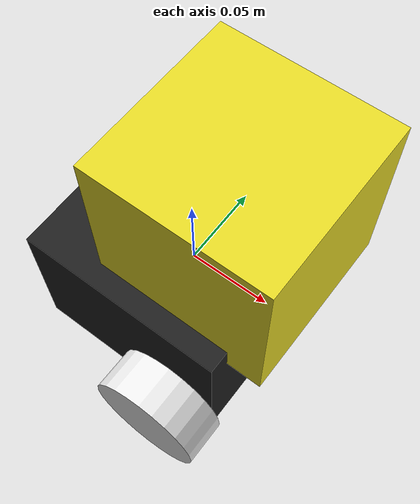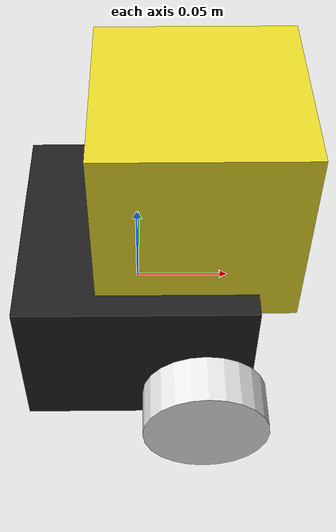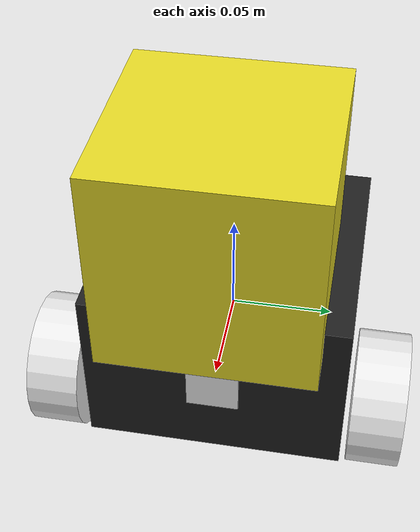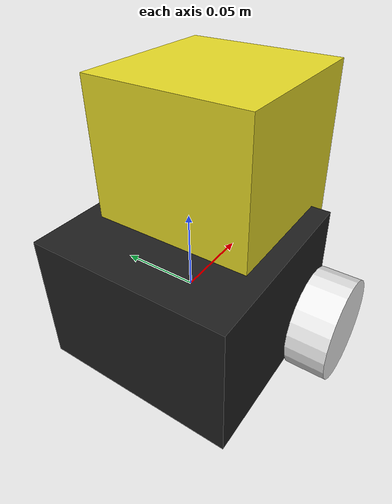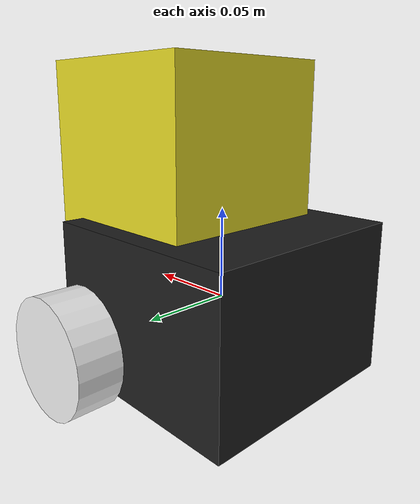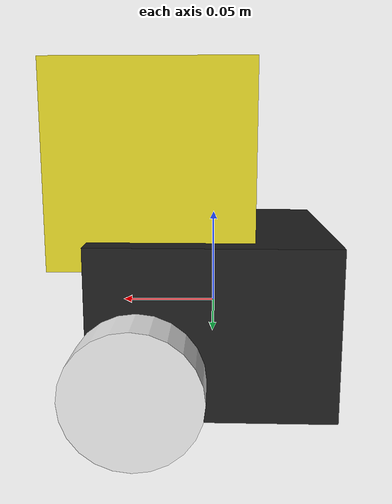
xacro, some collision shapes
<?xml version="1.0" ?>

<robot name="baebot_sim" xmlns:xacro="https://www.ros.org/wiki/xacro" >
  <!--Import Plugins-->
  <xacro:include filename="$(find baebot_sim)/urdf/baebot_sim.gazebo" />

  <!--Link (robot_footprint)-->
  <link name="robot_footprint"></link>

  <!--Joint (robot_footprint)-->
  <joint name="robot_footprint_joint" type="fixed">
    <origin xyz="0 0 0" rpy="0 0 0" />
    <parent link="robot_footprint"/>
    <child link="chassis" />
  </joint>

  <!--Link (chasiss)-->
  <link name="chassis">
    <pose>0 0 0.05 0 0 0</pose>

    <inertial>
      <mass value="0.8"/>
      <origin xyz="0 0 0" rpy="0 0 0"/>
      <inertia
          ixx="0.152" ixy="0" ixz="0"
          iyy="0.144" iyz="0"
          izz="0.2"
      />
    </inertial>

    <collision name="chassis_collision">
      <geometry>
        <box size="0.12 0.125 0.085"/>
      </geometry>
    </collision>

    <visual name='chassis_visual'>
      <origin rpy="0 0 0" xyz="0 0 0"/>
      <geometry>
        <box size="0.12 0.125 0.085"/>
      </geometry>
    </visual>

    <!--rear caster-->
    <collision name="front_caster_collision">
      <origin xyz="-0.0475 0 -0.04" rpy=" 0 0 0"/>
      <geometry>
        <sphere radius="0.01"/>
      </geometry>
    </collision>

    <visual name="front_caster_visual">
      <origin xyz="-0.0475 0 -0.04" rpy=" 0 0 0"/>
      <geometry>
        <sphere radius="0.01"/>
      </geometry>
    </visual>
  </link>

  <!--Link (left_wheel)-->
  <link name='left_wheel'>
    <inertial>
      <mass value="0.05"/>
      <origin xyz="0 0 0" rpy="0 1.5707 1.5707" />
      <inertia
          ixx="0.015" ixy="0" ixz="0"
          iyy="0.015" iyz="0"
          izz="0.0044"
      />
    </inertial>

    <collision name='left_wheel_collision'>
      <origin xyz="0 0 0" rpy="0 1.5707 1.5707"/>
      <geometry>
        <cylinder length="0.025" radius="0.0325"/>
      </geometry>
    </collision>

    <visual name='left_wheel_visual'>
      <origin xyz="0 0 0" rpy="0 1.5707 1.5707"/>
      <geometry>
        <cylinder length="0.025" radius="0.0325"/>
      </geometry>
    </visual>

  </link>

  <!--Joint (left_wheel_hinge)-->
  <joint name="left_wheel_hinge" type="continuous">
    <origin xyz="0.035 0.078 -0.02" rpy="0 0 0"/>
    <child link="left_wheel" />
    <parent link="chassis"/>
    <axis xyz="0 1 0" rpy="0 0 0" />
    <limit effort="1" velocity="1.5"/>
    <joint_properties damping="0" friction="0" />
  </joint>

  <!--Link (right_wheel)-->
  <link name="right_wheel">
    <inertial>
      <origin xyz="0 0 0" rpy="0 1.5707 1.5707" />
      <mass value="0.05"/>
      <inertia
          ixx="0.015" ixy="0" ixz="0"
          iyy="0.015" iyz="0"
          izz="0.0044"
      />
    </inertial>

    <collision name="right_wheel_collision">
      <origin xyz="0 0 0" rpy="0 1.5707 1.5707"/>
      <geometry>
        <cylinder length="0.025" radius="0.0325"/>
      </geometry>
    </collision>

    <visual name="right_wheel_visual">
      <origin xyz="0 0 0" rpy="0 1.5707 1.5707"/>
      <geometry>
        <cylinder length="0.025" radius="0.0325"/>
      </geometry>
    </visual>
  </link>

  <!--Joint (right_wheel_hinge)-->
  <joint name="right_wheel_hinge" type="continuous">
    <origin xyz="0.035 -0.078 -0.02" rpy="0 0 0"/>
    <child link="right_wheel" />
    <parent link="chassis"/>
    <axis rpy="0 0 0" xyz="0 1 0"/>
    <limit effort="1" velocity="1.5"/>
    <joint_properties damping="0" friction="0" />
  </joint>

  <!--Link (camera)-->
  <link name='camera'>
    <inertial>
      <origin xyz="0 0 0" rpy="0 0 0"/>
      <mass value="0.001"/>
      <!--box_inertia m="0.001" x="0.001" y="0.025" z="0.025"/-->
      <inertia
          ixx="1e-9" ixy="0" ixz="0"
          iyy="1e-9" iyz="0"
          izz="1e-9"
      />
    </inertial>

    <visual name='camera_visual'>
      <origin xyz="0 0 0" rpy="0 0 0"/>
      <geometry>
        <box size=".001 .025 .025"/>
      </geometry>
    </visual>

    <collision name='camera_collision'>
      <origin xyz="0 0 0" rpy="0 0 0"/>
      <geometry>
        <box size=".001 .025 .025"/>
      </geometry>
    </collision>
  </link>

  <!--Joint (camera)-->
  <joint type="fixed" name="camera_joint">
    <origin xyz="0.061 0 0" rpy="0 0 0"/>
    <child link="camera"/>
    <parent link="chassis"/>
    <axis xyz="0 1 0"/>
  </joint>

  <!--Links (hokuyo)-->
  <link name='hokuyo'>
    <inertial>
      <origin xyz="0 0 0" rpy="0 0 0"/>
      <mass value="0.1"/>
      <inertia
          ixx="1e-6" ixy="0" ixz="0"
          iyy="1e-6" iyz="0"
          izz="1e-6"
      />
    </inertial>

    <visual name='hokuyo_visual'>
      <origin xyz="0 0 0" rpy="0 0 0"/>
      <geometry>
        <mesh filename="package://baebot_sim/meshes/hokuyo.dae"/>
      </geometry>
    </visual>

    <collision name='hokuyo_collision'>
      <origin xyz="0 0 0" rpy="0 0 0"/>
      <geometry>
        <box size=".1 .1 .1"/>
      </geometry>
    </collision>
  </link>

  <!--Joint (hokuyo)-->
  <joint type="fixed" name="hokuyo_joint">
    <origin xyz="0.03 0 .078" rpy="0 0 0"/>
    <child link="hokuyo"/>
    <parent link="chassis"/>
    <axis xyz="0 1 0"/>
  </joint>

  <!--give your robot some color-->
  <gazebo reference="chassis">
    <material>Gazebo/Black</material>
  </gazebo>

  <gazebo reference="left_wheel">
    <material>Gazebo/White</material>
  </gazebo>

  <gazebo reference="right_wheel">
    <material>Gazebo/White</material>
  </gazebo>

  <gazebo reference="camera">
    <material>Gazebo/White</material>
  </gazebo>

  <gazebo reference="hokuyo">
    <material>Gazebo/Yellow</material>
  </gazebo>

</robot>
